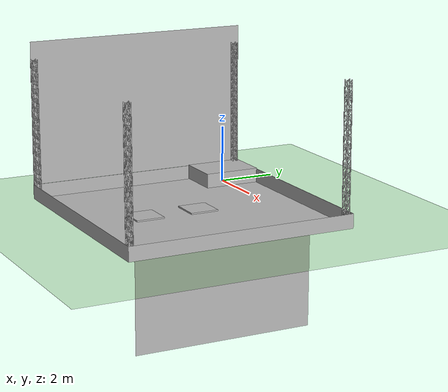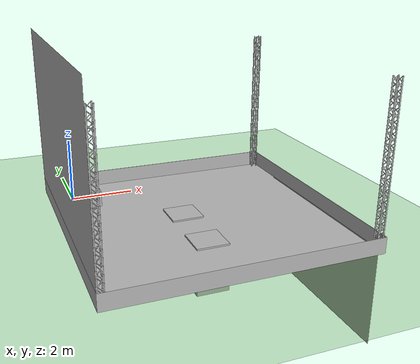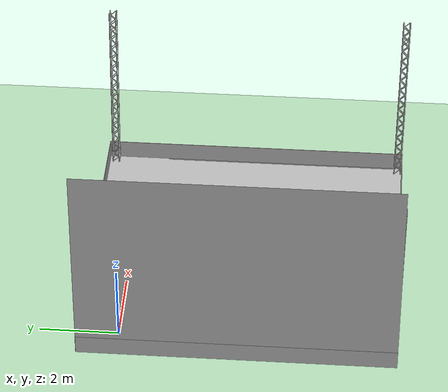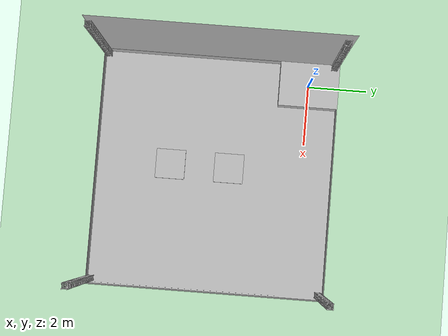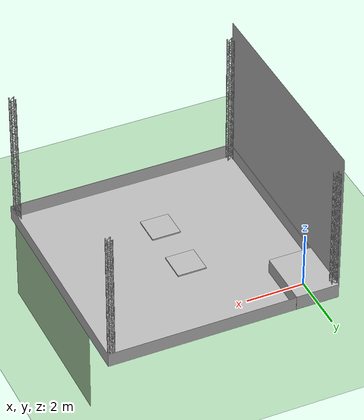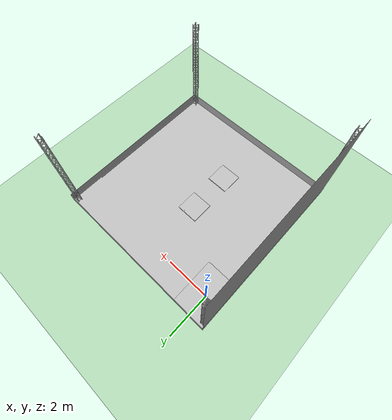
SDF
<?xml version="1.0" ?>
<?xml-model href="http://sdformat.org/schemas/root.xsd" schematypens="http://www.w3.org/2001/XMLSchema"?>
<sdf version="1.5">
  <world name="default">
    <plugin name="mrs_gazebo_static_transform_republisher_plugin" filename="libMrsGazeboCommonResources_StaticTransformRepublisher.so"/>

    <!-- coordinate system {-->
    <spherical_coordinates>
      <surface_model>EARTH_WGS84</surface_model>
      <latitude_deg>47.397743</latitude_deg>
      <longitude_deg>8.545594</longitude_deg>
      <elevation>0.0</elevation>
      <heading_deg>0</heading_deg>
    </spherical_coordinates>

    <!-- physics engine {-->
    <physics name="default_physics" default="0" type="ode">
      <gravity>0 0 -9.8066</gravity>
      <ode>
        <solver>
          <type>quick</type>
          <iters>50</iters>
          <sor>1.0</sor>
          <use_dynamic_moi_rescaling>0</use_dynamic_moi_rescaling>
        </solver>
        <constraints>
          <cfm>0</cfm>
          <erp>0.2</erp>
          <contact_max_correcting_vel>1000</contact_max_correcting_vel>
          <contact_surface_layer>0.001</contact_surface_layer>
        </constraints>
      </ode>
      <max_step_size>0.004</max_step_size>
      <real_time_factor>1</real_time_factor>
      <real_time_update_rate>250</real_time_update_rate>
      <magnetic_field>6.0e-06 2.3e-05 -4.2e-05</magnetic_field>
    </physics>

    <!-- setup shadows {-->
    <scene>
      <shadows>false</shadows>
    </scene>

    <!-- sun {-->
    <light type="directional" name="sun">
      <cast_shadows>true</cast_shadows>
      <pose>250 250 600 0 0 0</pose>
      <diffuse>0.8 0.8 0.8 1</diffuse>
      <specular>0.2 0.2 0.2 1</specular>
      <attenuation>
        <range>1000</range>
        <constant>0.9</constant>
        <linear>0.01</linear>
        <quadratic>0.001</quadratic>
      </attenuation>
      <direction>0 0 -1</direction>
    </light>

    <!-- ground plane {-->
    <model name="ground_plane">
      <static>true</static>
      <link name="link">
        <collision name="collision">
          <pose>0 0 0 0 0 0</pose>
          <geometry>
            <plane>
              <normal>0 0 1</normal>
              <size>250 250</size>
            </plane>
          </geometry>
          <surface>
            <friction>
              <ode>
                <mu>1</mu>
                <mu2>1</mu2>
              </ode>
            </friction>
          </surface>
        </collision>
        <visual name="grass">
          <pose>0 0 0 0 0 0</pose>
          <cast_shadows>false</cast_shadows>
          <geometry>
            <plane>
              <normal>0 0 1</normal>
              <size>150 250</size>
            </plane>
          </geometry>
          <material>
            <script>
              <uri>file://media/materials/scripts/Gazebo.material</uri>
              <name>Gazebo/Grass</name>
            </script>
          </material>
        </visual>
      </link>
    </model>

    <!-- GUI frame synchronization {-->
    <plugin name="mrs_gazebo_rviz_cam_synchronizer" filename="libMrsGazeboCommonResources_RvizCameraSynchronizer.so" >
      <target_frame_id>gazebo_user_camera</target_frame_id>
      <world_origin_frame_id>uav1/gps_origin</world_origin_frame_id>
      <frame_to_follow>uav1::base_link</frame_to_follow>
    </plugin>

    <!-- user camera {-->
    <gui>
      <camera name="camera">
        <pose>15 2 10 0 0.6 -2.64</pose>
      </camera>
    </gui>
    <!-- Models Worlds -->

    <!-- THE ARENA MODEL -->
    <model name="arena">
      <include>
        <uri>model://arena_spawn</uri>
        <!-- Pose ( x y z r p y ) -->
        <pose>-0.75 -7.0 0.001 0 -0 0</pose>
      </include>
    </model>

    <!-- THE TAKEOFF PLATFORM MODEL -->
    <model name="takeoff_platform">
      <include>
        <uri>model://takeoff_platform</uri>
        <pose>0.0 0.0 0.0 0.0 -0.0 0.0</pose>
      </include>
    </model>

    <!-- THE BANNER MODEL -->
    <model name="banner">
      <include>
        <uri>model://banner</uri>
        <pose>-0.75 -7.0 0.5 0.0 0.0 0.0</pose>
      </include>
    </model>

    <model name="banner_2">
      <include>
        <uri>model://banner_2</uri>
        <pose>-0.75 1.0 0.5 0.0 0.0 -1.57</pose>
      </include>
    </model>

    <!-- THE SUSPENDED LANDING PLATFORM MODEL -->

    <model name="landing_platform_1">
      <include>
        <uri>model://suspended_landing_platform</uri>
        <pose>3.0 -2.5 0.05 0 0 0</pose>
      </include>
    </model>

    <model name="landing_platform_2">
      <include>
        <uri>model://suspended_landing_platform</uri>
        <pose>3.0 -4.5 0.05 0 0 0</pose>
      </include>
    </model>

  </world>
</sdf>

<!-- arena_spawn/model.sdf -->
<sdf version='1.6'>
  <model name='arena_spawn'>
    <link name='link_arena'>
      <inertial>
        <mass>15</mass>
        <inertia>
          <ixx>1</ixx>
          <ixy>1</ixy>
          <ixz>1</ixz>
          <iyy>1</iyy>
          <iyz>1</iyz>
          <izz>1</izz>
        </inertia>
      </inertial>
      <self_collide>1</self_collide>
      <enable_wind>0</enable_wind>
      <kinematic>0</kinematic>
      <pose frame=''>0 0 0 0 -0 0</pose>
      <visual name='visual'>
        <pose frame=''>0 0 0 0 -0 0</pose>
        <geometry>
          <mesh>
            <uri>model://arena_spawn/meshes/Arena.obj</uri>
            <scale>1 1 1</scale>
          </mesh>
        </geometry>
        <transparency>0</transparency>
        <cast_shadows>1</cast_shadows>
      </visual>
      <collision name='collision'>
        <laser_retro>0</laser_retro>
        <max_contacts>10</max_contacts>
        <pose frame=''>0 0 0 0 -0 0</pose>
        <geometry>
          <mesh>
            <uri>model://arena_spawn/meshes/Arena.obj</uri>
            <scale>1 1 1</scale>
          </mesh>
        </geometry>
        <surface>
          <friction>
            <ode>
              <mu>1</mu>
              <mu2>1</mu2>
              <fdir1>0 0 0</fdir1>
              <slip1>0</slip1>
              <slip2>0</slip2>
            </ode>
            <torsional>
              <coefficient>1</coefficient>
              <patch_radius>100</patch_radius>
              <surface_radius>100</surface_radius>
              <use_patch_radius>1</use_patch_radius>
              <ode>
                <slip>0</slip>
              </ode>
            </torsional>
          </friction>
          <bounce>
            <restitution_coefficient>0</restitution_coefficient>
            <threshold>1e+06</threshold>
          </bounce>
          <contact>
            <collide_without_contact>0</collide_without_contact>
            <collide_without_contact_bitmask>1</collide_without_contact_bitmask>
            <collide_bitmask>1</collide_bitmask>
            <ode>
              <soft_cfm>0</soft_cfm>
              <soft_erp>0.2</soft_erp>
              <kp>1e+13</kp>
              <kd>1</kd>
              <max_vel>0.01</max_vel>
              <min_depth>0</min_depth>
            </ode>
            <bullet>
              <split_impulse>1</split_impulse>
              <split_impulse_penetration_threshold>-0.01</split_impulse_penetration_threshold>
              <soft_cfm>0</soft_cfm>
              <soft_erp>0.2</soft_erp>
              <kp>1e+13</kp>
              <kd>1</kd>
            </bullet>
          </contact>
        </surface>
      </collision>
    </link>
    <link name='pilar_1'>
      <inertial>
        <mass>1</mass>
        <inertia>
          <ixx>0.166667</ixx>
          <ixy>0</ixy>
          <ixz>0</ixz>
          <iyy>0.166667</iyy>
          <iyz>0</iyz>
          <izz>0.166667</izz>
        </inertia>
      </inertial>
      <self_collide>1</self_collide>
      <enable_wind>0</enable_wind>
      <kinematic>0</kinematic>
      <pose frame=''>0 0 0 0 -0 0</pose>
      <visual name='visual'>
        <pose frame=''>0 0 0 0 -0 0</pose>
        <geometry>
          <mesh>
            <uri>model://arena_spawn/meshes/pilar.obj</uri>
            <scale>1 1 1</scale>
          </mesh>
        </geometry>
        <transparency>0</transparency>
        <cast_shadows>1</cast_shadows>
      </visual>
      <collision name='collision'>
        <laser_retro>0</laser_retro>
        <max_contacts>10</max_contacts>
        <pose frame=''>0 0 0 0 -0 0</pose>
        <geometry>
          <mesh>
            <uri>model://arena_spawn/meshes/pilar.obj</uri>
            <scale>1 1 1</scale>
          </mesh>
        </geometry>
        <surface>
          <friction>
            <ode>
              <mu>1</mu>
              <mu2>1</mu2>
              <fdir1>0 0 0</fdir1>
              <slip1>0</slip1>
              <slip2>0</slip2>
            </ode>
            <torsional>
              <coefficient>1</coefficient>
              <patch_radius>100</patch_radius>
              <surface_radius>100</surface_radius>
              <use_patch_radius>1</use_patch_radius>
              <ode>
                <slip>0</slip>
              </ode>
            </torsional>
          </friction>
          <bounce>
            <restitution_coefficient>0</restitution_coefficient>
            <threshold>1e+06</threshold>
          </bounce>
          <contact>
            <collide_without_contact>0</collide_without_contact>
            <collide_without_contact_bitmask>1</collide_without_contact_bitmask>
            <collide_bitmask>1</collide_bitmask>
            <ode>
              <soft_cfm>0</soft_cfm>
              <soft_erp>0.2</soft_erp>
              <kp>1e+13</kp>
              <kd>1</kd>
              <max_vel>0.01</max_vel>
              <min_depth>0</min_depth>
            </ode>
            <bullet>
              <split_impulse>1</split_impulse>
              <split_impulse_penetration_threshold>-0.01</split_impulse_penetration_threshold>
              <soft_cfm>0</soft_cfm>
              <soft_erp>0.2</soft_erp>
              <kp>1e+13</kp>
              <kd>1</kd>
            </bullet>
          </contact>
        </surface>
      </collision>
    </link>
    <link name='pilar_2'>
      <inertial>
        <mass>1</mass>
        <inertia>
          <ixx>0.166667</ixx>
          <ixy>0</ixy>
          <ixz>0</ixz>
          <iyy>0.166667</iyy>
          <iyz>0</iyz>
          <izz>0.166667</izz>
        </inertia>
      </inertial>
      <self_collide>1</self_collide>
      <enable_wind>0</enable_wind>
      <kinematic>0</kinematic>
      <pose frame=''>7.7 0 0 0 -0 0</pose>
      <visual name='visual'>
        <pose frame=''>0 0 0 0 -0 0</pose>
        <geometry>
          <mesh>
            <uri>model://arena_spawn/meshes/pilar.obj</uri>
            <scale>1 1 1</scale>
          </mesh>
        </geometry>
        <transparency>0</transparency>
        <cast_shadows>1</cast_shadows>
      </visual>
      <collision name='collision'>
        <laser_retro>0</laser_retro>
        <max_contacts>10</max_contacts>
        <pose frame=''>0 0 0 0 -0 0</pose>
        <geometry>
          <mesh>
            <uri>model://arena_spawn/meshes/pilar.obj</uri>
            <scale>1 1 1</scale>
          </mesh>
        </geometry>
        <surface>
          <friction>
            <ode>
              <mu>1</mu>
              <mu2>1</mu2>
              <fdir1>0 0 0</fdir1>
              <slip1>0</slip1>
              <slip2>0</slip2>
            </ode>
            <torsional>
              <coefficient>1</coefficient>
              <patch_radius>100</patch_radius>
              <surface_radius>100</surface_radius>
              <use_patch_radius>1</use_patch_radius>
              <ode>
                <slip>0</slip>
              </ode>
            </torsional>
          </friction>
          <bounce>
            <restitution_coefficient>0</restitution_coefficient>
            <threshold>1e+06</threshold>
          </bounce>
          <contact>
            <collide_without_contact>0</collide_without_contact>
            <collide_without_contact_bitmask>1</collide_without_contact_bitmask>
            <collide_bitmask>1</collide_bitmask>
            <ode>
              <soft_cfm>0</soft_cfm>
              <soft_erp>0.2</soft_erp>
              <kp>1e+13</kp>
              <kd>1</kd>
              <max_vel>0.01</max_vel>
              <min_depth>0</min_depth>
            </ode>
            <bullet>
              <split_impulse>1</split_impulse>
              <split_impulse_penetration_threshold>-0.01</split_impulse_penetration_threshold>
              <soft_cfm>0</soft_cfm>
              <soft_erp>0.2</soft_erp>
              <kp>1e+13</kp>
              <kd>1</kd>
            </bullet>
          </contact>
        </surface>
      </collision>
    </link>
    <link name='pilar_3'>
      <inertial>
        <mass>1</mass>
        <inertia>
          <ixx>0.166667</ixx>
          <ixy>0</ixy>
          <ixz>0</ixz>
          <iyy>0.166667</iyy>
          <iyz>0</iyz>
          <izz>0.166667</izz>
        </inertia>
      </inertial>
      <self_collide>1</self_collide>
      <enable_wind>0</enable_wind>
      <kinematic>0</kinematic>
      <pose frame=''>0 7.7 0 0 -0 0</pose>
      <visual name='visual'>
        <pose frame=''>0 0 0 0 -0 0</pose>
        <geometry>
          <mesh>
            <uri>model://arena_spawn/meshes/pilar.obj</uri>
            <scale>1 1 1</scale>
          </mesh>
        </geometry>
        <transparency>0</transparency>
        <cast_shadows>1</cast_shadows>
      </visual>
      <collision name='collision'>
        <laser_retro>0</laser_retro>
        <max_contacts>10</max_contacts>
        <pose frame=''>0 0 0 0 -0 0</pose>
        <geometry>
          <mesh>
            <uri>model://arena_spawn/meshes/pilar.obj</uri>
            <scale>1 1 1</scale>
          </mesh>
        </geometry>
        <surface>
          <friction>
            <ode>
              <mu>1</mu>
              <mu2>1</mu2>
              <fdir1>0 0 0</fdir1>
              <slip1>0</slip1>
              <slip2>0</slip2>
            </ode>
            <torsional>
              <coefficient>1</coefficient>
              <patch_radius>100</patch_radius>
              <surface_radius>100</surface_radius>
              <use_patch_radius>1</use_patch_radius>
              <ode>
                <slip>0</slip>
              </ode>
            </torsional>
          </friction>
          <bounce>
            <restitution_coefficient>0</restitution_coefficient>
            <threshold>1e+06</threshold>
          </bounce>
          <contact>
            <collide_without_contact>0</collide_without_contact>
            <collide_without_contact_bitmask>1</collide_without_contact_bitmask>
            <collide_bitmask>1</collide_bitmask>
            <ode>
              <soft_cfm>0</soft_cfm>
              <soft_erp>0.2</soft_erp>
              <kp>1e+13</kp>
              <kd>1</kd>
              <max_vel>0.01</max_vel>
              <min_depth>0</min_depth>
            </ode>
            <bullet>
              <split_impulse>1</split_impulse>
              <split_impulse_penetration_threshold>-0.01</split_impulse_penetration_threshold>
              <soft_cfm>0</soft_cfm>
              <soft_erp>0.2</soft_erp>
              <kp>1e+13</kp>
              <kd>1</kd>
            </bullet>
          </contact>
        </surface>
      </collision>
    </link>
    <link name='pilar_4'>
      <inertial>
        <mass>1</mass>
        <inertia>
          <ixx>0.166667</ixx>
          <ixy>0</ixy>
          <ixz>0</ixz>
          <iyy>0.166667</iyy>
          <iyz>0</iyz>
          <izz>0.166667</izz>
        </inertia>
      </inertial>
      <self_collide>1</self_collide>
      <enable_wind>0</enable_wind>
      <kinematic>0</kinematic>
      <pose frame=''>7.7 7.7 0 0 -0 0</pose>
      <visual name='visual'>
        <pose frame=''>0 0 0 0 -0 0</pose>
        <geometry>
          <mesh>
            <uri>model://arena_spawn/meshes/pilar.obj</uri>
            <scale>1 1 1</scale>
          </mesh>
        </geometry>
        <transparency>0</transparency>
        <cast_shadows>1</cast_shadows>
      </visual>
      <collision name='collision'>
        <laser_retro>0</laser_retro>
        <max_contacts>10</max_contacts>
        <pose frame=''>0 0 0 0 -0 0</pose>
        <geometry>
          <mesh>
            <uri>model://arena_spawn/meshes/pilar.obj</uri>
            <scale>1 1 1</scale>
          </mesh>
        </geometry>
        <surface>
          <friction>
            <ode>
              <mu>1</mu>
              <mu2>1</mu2>
              <fdir1>0 0 0</fdir1>
              <slip1>0</slip1>
              <slip2>0</slip2>
            </ode>
            <torsional>
              <coefficient>1</coefficient>
              <patch_radius>100</patch_radius>
              <surface_radius>100</surface_radius>
              <use_patch_radius>1</use_patch_radius>
              <ode>
                <slip>0</slip>
              </ode>
            </torsional>
          </friction>
          <bounce>
            <restitution_coefficient>0</restitution_coefficient>
            <threshold>1e+06</threshold>
          </bounce>
          <contact>
            <collide_without_contact>0</collide_without_contact>
            <collide_without_contact_bitmask>1</collide_without_contact_bitmask>
            <collide_bitmask>1</collide_bitmask>
            <ode>
              <soft_cfm>0</soft_cfm>
              <soft_erp>0.2</soft_erp>
              <kp>1e+13</kp>
              <kd>1</kd>
              <max_vel>0.01</max_vel>
              <min_depth>0</min_depth>
            </ode>
            <bullet>
              <split_impulse>1</split_impulse>
              <split_impulse_penetration_threshold>-0.01</split_impulse_penetration_threshold>
              <soft_cfm>0</soft_cfm>
              <soft_erp>0.2</soft_erp>
              <kp>1e+13</kp>
              <kd>1</kd>
            </bullet>
          </contact>
        </surface>
      </collision>
    </link>
    <static>1</static>
    <pose frame=''>0 0 0.0005 0 -0 0</pose>
  </model>
</sdf>

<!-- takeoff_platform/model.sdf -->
<sdf version='1.6'>
  <model name='takeoff_platform'>
    <link name='link_takeoff_platform'>
      <inertial>
        <mass>15</mass>
        <inertia>
          <ixx>1</ixx>
          <ixy>0</ixy>
          <ixz>0</ixz>
          <iyy>1</iyy>
          <iyz>0</iyz>
          <izz>1</izz>
        </inertia>
      </inertial>
      <self_collide>1</self_collide>
      <enable_wind>0</enable_wind>
      <kinematic>0</kinematic>
      <pose frame=''>0 0 0 0 -0 0</pose>
      <visual name='visual'>
        <pose frame=''>0 0 0 0 -0 0</pose>
        <geometry>
          <mesh>
            <uri>model://takeoff_platform/meshes/takeoff_platform.obj</uri>
            <scale>1 1 1</scale>
          </mesh>
        </geometry>
        <transparency>0</transparency>
        <cast_shadows>1</cast_shadows>
      </visual>
      <collision name='collision'>
        <laser_retro>0</laser_retro>
        <max_contacts>10</max_contacts>
        <pose frame=''>0 0 0 0 -0 0</pose>
        <geometry>
          <mesh>
            <uri>model://takeoff_platform/meshes/takeoff_platform.obj</uri>
            <scale>1 1 1</scale>
          </mesh>
        </geometry>
        <surface>
          <friction>
            <ode>
              <mu>1</mu>
              <mu2>1</mu2>
              <fdir1>0 0 0</fdir1>
              <slip1>0</slip1>
              <slip2>0</slip2>
            </ode>
            <torsional>
              <coefficient>1</coefficient>
              <patch_radius>100</patch_radius>
              <surface_radius>100</surface_radius>
              <use_patch_radius>1</use_patch_radius>
              <ode>
                <slip>0</slip>
              </ode>
            </torsional>
          </friction>
          <bounce>
            <restitution_coefficient>0</restitution_coefficient>
            <threshold>1e+06</threshold>
          </bounce>
          <contact>
            <collide_without_contact>0</collide_without_contact>
            <collide_without_contact_bitmask>1</collide_without_contact_bitmask>
            <collide_bitmask>1</collide_bitmask>
            <ode>
              <soft_cfm>0</soft_cfm>
              <soft_erp>0.2</soft_erp>
              <kp>1e+13</kp>
              <kd>1</kd>
              <max_vel>0.01</max_vel>
              <min_depth>0</min_depth>
            </ode>
            <bullet>
              <split_impulse>1</split_impulse>
              <split_impulse_penetration_threshold>-0.01</split_impulse_penetration_threshold>
              <soft_cfm>0</soft_cfm>
              <soft_erp>0.2</soft_erp>
              <kp>1e+13</kp>
              <kd>1</kd>
            </bullet>
          </contact>
        </surface>
      </collision>
    </link>
    <static>1</static>
    <pose frame=''>0 0 0.0005 0 -0 0</pose>
  </model>
</sdf>

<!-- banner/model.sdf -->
<sdf version='1.6'>
  <model name='banner'>
    <link name='link_0'>
      <inertial>
        <mass>1</mass>
        <inertia>
          <ixx>0.166667</ixx>
          <ixy>0</ixy>
          <ixz>0</ixz>
          <iyy>0.166667</iyy>
          <iyz>0</iyz>
          <izz>0.166667</izz>
        </inertia>
      </inertial>
      <pose>0 0 0 0 -0 0</pose>
      <visual name='visual'>
        <pose>0 0 0 0 -0 0</pose>
        <geometry>
          <mesh>
            <uri>model://banner/meshes/banner.obj</uri>
            <scale>1.0 1.0 1.0</scale>
          </mesh>
        </geometry>
        <transparency>0</transparency>
        <cast_shadows>1</cast_shadows>
      </visual>
      <collision name='collision'>
        <laser_retro>0</laser_retro>
        <max_contacts>10</max_contacts>
        <pose>0 0 0 0 -0 0</pose>
        <geometry>
          <mesh>
            <uri>model://banner/meshes/banner.obj</uri>
            <scale>1.0 1.0 1.0</scale>
          </mesh>
        </geometry>
      </collision>
    </link>
    <static>1</static>
    <allow_auto_disable>1</allow_auto_disable>
  </model>
</sdf>

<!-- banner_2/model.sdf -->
<sdf version='1.6'>
  <model name='banner_2'>
    <link name='link_0'>
      <inertial>
        <mass>1</mass>
        <inertia>
          <ixx>0.166667</ixx>
          <ixy>0</ixy>
          <ixz>0</ixz>
          <iyy>0.166667</iyy>
          <iyz>0</iyz>
          <izz>0.166667</izz>
        </inertia>
      </inertial>
      <pose>0 0 0 0 -0 0</pose>
      <visual name='visual'>
        <pose>0 0 0 0 -0 0</pose>
        <geometry>
          <mesh>
            <uri>model://banner_2/meshes/banner.obj</uri>
            <scale>1.0 1.0 1.0</scale>
          </mesh>
        </geometry>
        <transparency>0</transparency>
        <cast_shadows>1</cast_shadows>
      </visual>
      <collision name='collision'>
        <laser_retro>0</laser_retro>
        <max_contacts>10</max_contacts>
        <pose>0 0 0 0 -0 0</pose>
        <geometry>
          <mesh>
            <uri>model://banner_2/meshes/banner.obj</uri>
            <scale>1.0 1.0 1.0</scale>
          </mesh>
        </geometry>
      </collision>
    </link>
    <static>1</static>
    <allow_auto_disable>1</allow_auto_disable>
  </model>
</sdf>

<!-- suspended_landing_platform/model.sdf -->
<sdf version='1.6'>
  <model name='suspended_landing_platform'>
    <link name='link_suspended_landing_platform'>
      <inertial>
        <mass>1</mass>
        <inertia>
          <ixx>0.166667</ixx>
          <ixy>0</ixy>
          <ixz>0</ixz>
          <iyy>0.166667</iyy>
          <iyz>0</iyz>
          <izz>0.166667</izz>
        </inertia>
        <pose>0 0 0 0 -0 0</pose>
      </inertial>
      <self_collide>0</self_collide>
      <enable_wind>0</enable_wind>
      <kinematic>0</kinematic>
      <pose>0 0 0 0 -0 0</pose>
      <gravity>1</gravity>
      <visual name='visual'>
        <pose frame=''>0 0 0 0 -0 0</pose>
        <geometry>
          <mesh>
            <uri>model://suspended_landing_platform/meshes/suspended_landing_platform.obj</uri>
            <scale>1 1 1</scale>
          </mesh>
        </geometry>
        <transparency>0</transparency>
        <cast_shadows>1</cast_shadows>
      </visual>
      <collision name='collision'>
        <laser_retro>0</laser_retro>
        <max_contacts>10</max_contacts>
        <pose>0 0 -0.75 0 -0 0</pose>
        <geometry>
          <box>
            <size>1 1 1.5</size>
          </box>
        </geometry>
        <surface>
          <friction>
            <ode>
              <mu>100</mu>
              <mu2>100</mu2>
              <fdir1>0 0 0</fdir1>
              <slip1>0</slip1>
              <slip2>0</slip2>
            </ode>
            <torsional>
              <coefficient>1</coefficient>
              <patch_radius>1</patch_radius>
              <surface_radius>1</surface_radius>
              <use_patch_radius>1</use_patch_radius>
              <ode>
                <slip>0</slip>
              </ode>
            </torsional>
          </friction>
          <bounce>
            <restitution_coefficient>1</restitution_coefficient>
            <threshold>1e+06</threshold>
          </bounce>
          <contact>
            <collide_without_contact>0</collide_without_contact>
            <collide_without_contact_bitmask>1</collide_without_contact_bitmask>
            <collide_bitmask>1</collide_bitmask>
            <ode>
              <soft_cfm>0</soft_cfm>
              <soft_erp>0.2</soft_erp>
              <kp>1e+13</kp>
              <kd>1</kd>
              <max_vel>0.01</max_vel>
              <min_depth>0</min_depth>
            </ode>
            <bullet>
              <split_impulse>1</split_impulse>
              <split_impulse_penetration_threshold>-0.01</split_impulse_penetration_threshold>
              <soft_cfm>0</soft_cfm>
              <soft_erp>0.2</soft_erp>
              <kp>1e+13</kp>
              <kd>1</kd>
            </bullet>
          </contact>
        </surface>
      </collision>
    </link>
    <static>1</static>
    <allow_auto_disable>1</allow_auto_disable>
  </model>
</sdf>
